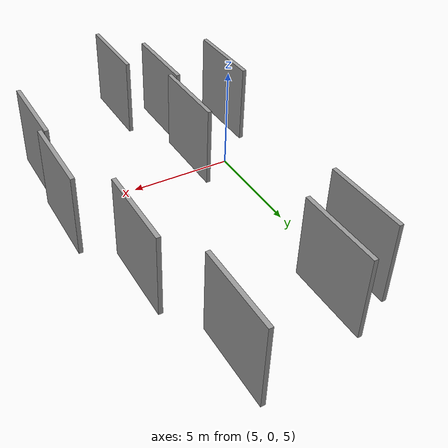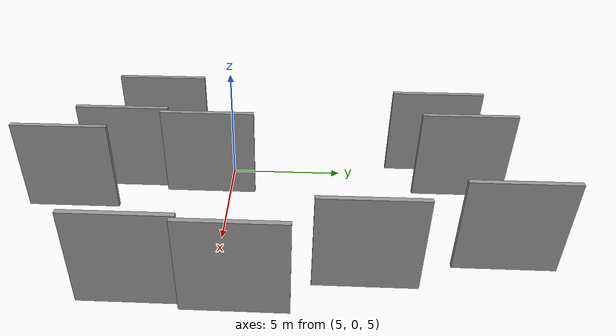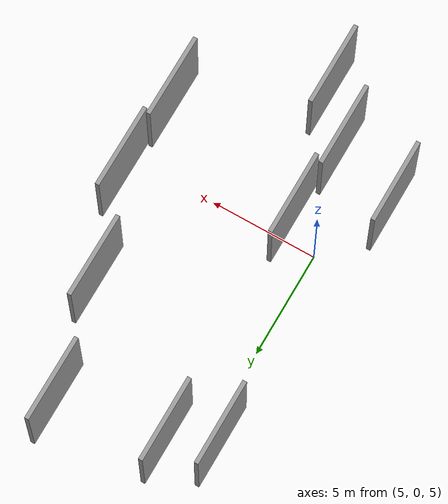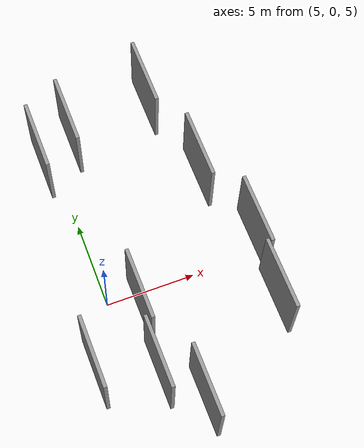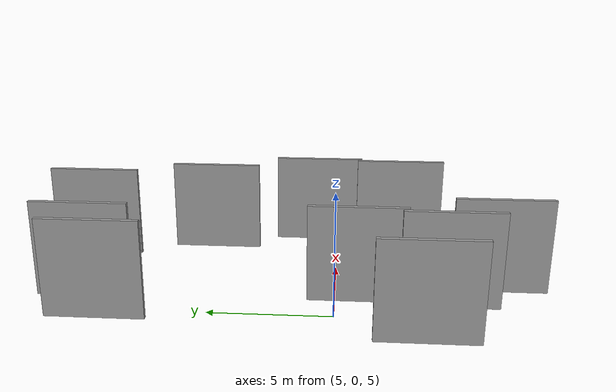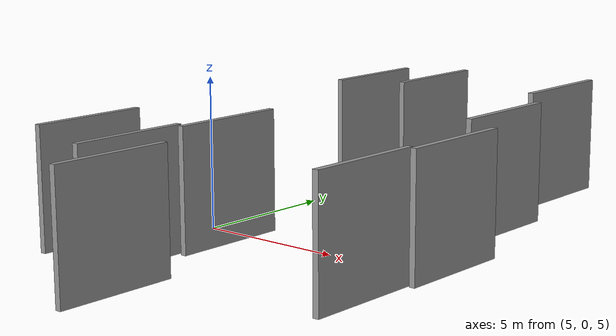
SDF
<sdf version="1.6">
 <world name="default">
  <scene>
   <sky><clouds><speed>12</speed></clouds></sky>
   <ambient>0.4 0.4 0.4 1</ambient>
   <background>0.7 0.7 0.7 1</background>
   <shadows>1</shadows>
  </scene>
  <gravity>0 0 -9.8066</gravity>
  <magnetic_field>6e-06 2.3e-05 -4.2e-05</magnetic_field>
  <physics default="0" name="default_physics" type="ode">
   <ode>
    <solver>
     <type>quick</type>
     <iters>10</iters>
     <sor>1.0</sor>
     <use_dynamic_moi_rescaling>0</use_dynamic_moi_rescaling>
    </solver>
    <constraints>
     <cfm>0</cfm>
     <erp>0.2</erp>
     <contact_max_correcting_vel>100</contact_max_correcting_vel>
     <contact_surface_layer>0.001</contact_surface_layer>
    </constraints>
   </ode>
   <max_step_size>0.004</max_step_size>
   <real_time_factor>1</real_time_factor>
   <real_time_update_rate>250</real_time_update_rate>
  </physics>
  <light name="sun" type="directional">
   <pose>0 0 10 0 0 0</pose>
   <diffuse>0.8 0.8 0.8 1</diffuse>
   <specular>0.2 0.2 0.2 1</specular>
   <attenuation>
    <range>1000</range>
    <constant>0.9</constant>
    <linear>0.01</linear>
    <quadratic>0.001</quadratic>
   </attenuation>
   <direction>-0.5 0.1 -0.9</direction>
  </light>
  <model name="grey_wall_1">
   <static>1</static>
   <pose>6.2698 -4.6073 5.0 0.000000 0.000000 1.570796</pose>
   <link name="link">
    <pose>0 0 2.00 0 0 0</pose>
    <collision name="collision"><geometry><box><size>4.00 0.2 4.00</size></box></geometry></collision>
    <visual name="visual">
     <cast_shadows>0</cast_shadows>
     <geometry><box><size>4.00 0.2 4.00</size></box></geometry>
     <material>
      <script>
       <uri>model://grey_wall/materials/scripts</uri>
       <uri>model://grey_wall/materials/textures</uri>
       <name>vrc/grey_wall</name>
      </script>
     </material>
    </visual>
   </link>
  </model>
  <model name="grey_wall_2">
   <static>1</static>
   <pose>8.0022 -6.7992 5.0 0.000000 0.000000 1.570796</pose>
   <link name="link">
    <pose>0 0 2.00 0 0 0</pose>
    <collision name="collision"><geometry><box><size>4.00 0.2 4.00</size></box></geometry></collision>
    <visual name="visual">
     <cast_shadows>0</cast_shadows>
     <geometry><box><size>4.00 0.2 4.00</size></box></geometry>
     <material>
      <script>
       <uri>model://grey_wall/materials/scripts</uri>
       <uri>model://grey_wall/materials/textures</uri>
       <name>vrc/grey_wall</name>
      </script>
     </material>
    </visual>
   </link>
  </model>
  <model name="grey_wall_3">
   <static>1</static>
   <pose>12.4819 5.6644 5.0 0.000000 0.000000 1.570796</pose>
   <link name="link">
    <pose>0 0 2.00 0 0 0</pose>
    <collision name="collision"><geometry><box><size>4.00 0.2 4.00</size></box></geometry></collision>
    <visual name="visual">
     <cast_shadows>0</cast_shadows>
     <geometry><box><size>4.00 0.2 4.00</size></box></geometry>
     <material>
      <script>
       <uri>model://grey_wall/materials/scripts</uri>
       <uri>model://grey_wall/materials/textures</uri>
       <name>vrc/grey_wall</name>
      </script>
     </material>
    </visual>
   </link>
  </model>
  <model name="grey_wall_4">
   <static>1</static>
   <pose>3.1403 -3.4581 5.0 0.000000 0.000000 1.570796</pose>
   <link name="link">
    <pose>0 0 2.00 0 0 0</pose>
    <collision name="collision"><geometry><box><size>4.00 0.2 4.00</size></box></geometry></collision>
    <visual name="visual">
     <cast_shadows>0</cast_shadows>
     <geometry><box><size>4.00 0.2 4.00</size></box></geometry>
     <material>
      <script>
       <uri>model://grey_wall/materials/scripts</uri>
       <uri>model://grey_wall/materials/textures</uri>
       <name>vrc/grey_wall</name>
      </script>
     </material>
    </visual>
   </link>
  </model>
  <model name="grey_wall_5">
   <static>1</static>
   <pose>6.3594 10.2626 5.0 0.000000 0.000000 1.570796</pose>
   <link name="link">
    <pose>0 0 2.00 0 0 0</pose>
    <collision name="collision"><geometry><box><size>4.00 0.2 4.00</size></box></geometry></collision>
    <visual name="visual">
     <cast_shadows>0</cast_shadows>
     <geometry><box><size>4.00 0.2 4.00</size></box></geometry>
     <material>
      <script>
       <uri>model://grey_wall/materials/scripts</uri>
       <uri>model://grey_wall/materials/textures</uri>
       <name>vrc/grey_wall</name>
      </script>
     </material>
    </visual>
   </link>
  </model>
  <model name="grey_wall_6">
   <static>1</static>
   <pose>13.6818 -2.8947 5.0 0.000000 0.000000 1.570796</pose>
   <link name="link">
    <pose>0 0 2.00 0 0 0</pose>
    <collision name="collision"><geometry><box><size>4.00 0.2 4.00</size></box></geometry></collision>
    <visual name="visual">
     <cast_shadows>0</cast_shadows>
     <geometry><box><size>4.00 0.2 4.00</size></box></geometry>
     <material>
      <script>
       <uri>model://grey_wall/materials/scripts</uri>
       <uri>model://grey_wall/materials/textures</uri>
       <name>vrc/grey_wall</name>
      </script>
     </material>
    </visual>
   </link>
  </model>
  <model name="grey_wall_7">
   <static>1</static>
   <pose>11.2656 11.0893 5.0 0.000000 0.000000 1.570796</pose>
   <link name="link">
    <pose>0 0 2.00 0 0 0</pose>
    <collision name="collision"><geometry><box><size>4.00 0.2 4.00</size></box></geometry></collision>
    <visual name="visual">
     <cast_shadows>0</cast_shadows>
     <geometry><box><size>4.00 0.2 4.00</size></box></geometry>
     <material>
      <script>
       <uri>model://grey_wall/materials/scripts</uri>
       <uri>model://grey_wall/materials/textures</uri>
       <name>vrc/grey_wall</name>
      </script>
     </material>
    </visual>
   </link>
  </model>
  <model name="grey_wall_8">
   <static>1</static>
   <pose>13.9388 0.9223 5.0 0.000000 0.000000 1.570796</pose>
   <link name="link">
    <pose>0 0 2.00 0 0 0</pose>
    <collision name="collision"><geometry><box><size>4.00 0.2 4.00</size></box></geometry></collision>
    <visual name="visual">
     <cast_shadows>0</cast_shadows>
     <geometry><box><size>4.00 0.2 4.00</size></box></geometry>
     <material>
      <script>
       <uri>model://grey_wall/materials/scripts</uri>
       <uri>model://grey_wall/materials/textures</uri>
       <name>vrc/grey_wall</name>
      </script>
     </material>
    </visual>
   </link>
  </model>
  <model name="grey_wall_9">
   <static>1</static>
   <pose>4.3179 9.2642 5.0 0.000000 0.000000 1.570796</pose>
   <link name="link">
    <pose>0 0 2.00 0 0 0</pose>
    <collision name="collision"><geometry><box><size>4.00 0.2 4.00</size></box></geometry></collision>
    <visual name="visual">
     <cast_shadows>0</cast_shadows>
     <geometry><box><size>4.00 0.2 4.00</size></box></geometry>
     <material>
      <script>
       <uri>model://grey_wall/materials/scripts</uri>
       <uri>model://grey_wall/materials/textures</uri>
       <name>vrc/grey_wall</name>
      </script>
     </material>
    </visual>
   </link>
  </model>
  <model name="grey_wall_10">
   <static>1</static>
   <pose>6.6049 -0.8758 5.0 0.000000 0.000000 1.570796</pose>
   <link name="link">
    <pose>0 0 2.00 0 0 0</pose>
    <collision name="collision"><geometry><box><size>4.00 0.2 4.00</size></box></geometry></collision>
    <visual name="visual">
     <cast_shadows>0</cast_shadows>
     <geometry><box><size>4.00 0.2 4.00</size></box></geometry>
     <material>
      <script>
       <uri>model://grey_wall/materials/scripts</uri>
       <uri>model://grey_wall/materials/textures</uri>
       <name>vrc/grey_wall</name>
      </script>
     </material>
    </visual>
   </link>
  </model>
 </world>
</sdf>
